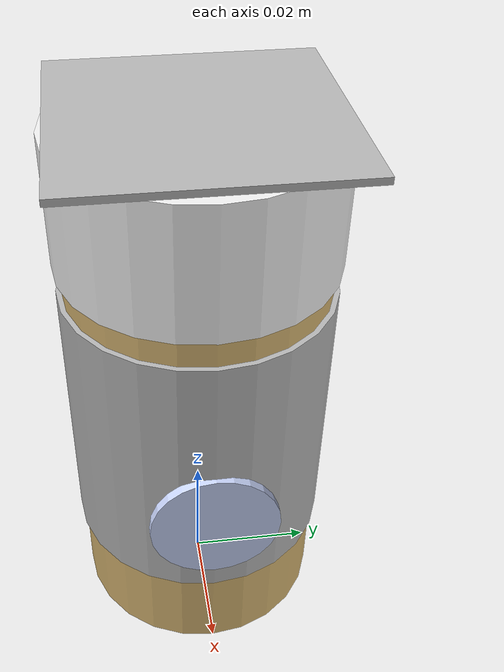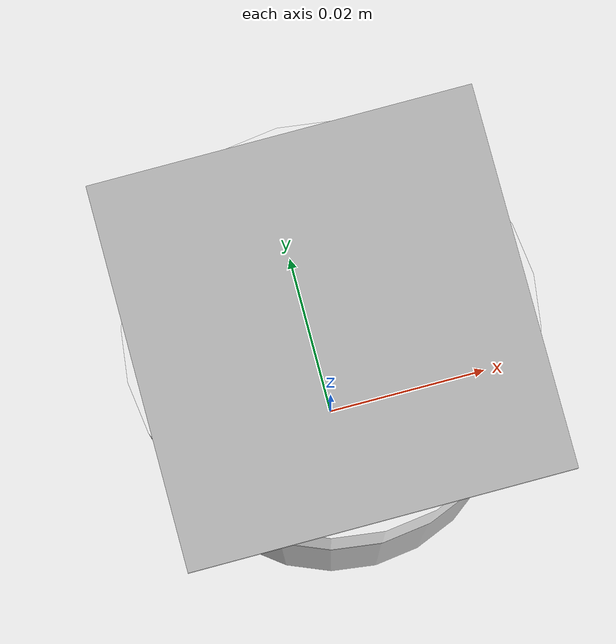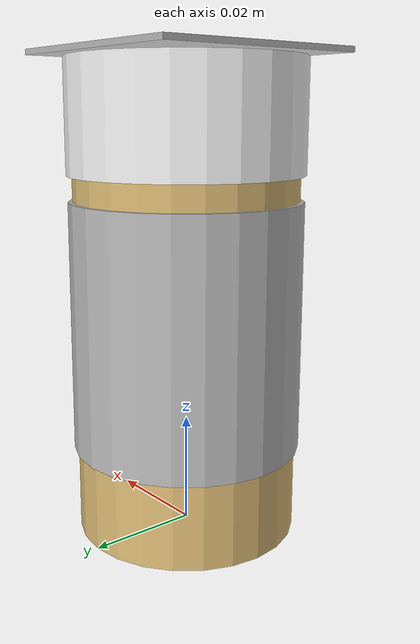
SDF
<?xml version="1.0"?>
<sdf version="1.6">
  <model name="nano_banana_bottle">
    <static>false</static>

    <!-- One link for stability (DART-friendly); visual details are separate visuals. -->
    <link name="bottle_link">
      <!-- Pose is left at origin; spawn/inclusion sets world pose. -->

      <inertial>
        <!-- Approx. small plastic bottle ~ 60g -->
        <mass>0.06</mass>
        <inertia>
          <ixx>1.2e-5</ixx>
          <ixy>0</ixy>
          <ixz>0</ixz>
          <iyy>1.2e-5</iyy>
          <iyz>0</iyz>
          <izz>2.0e-5</izz>
        </inertia>
      </inertial>

      <!-- Collision: simple cylinder -->
      <collision name="bottle_collision">
        <pose>0 0 0.035 0 0 0</pose>
        <geometry>
          <cylinder>
            <radius>0.020</radius>
            <length>0.070</length>
          </cylinder>
        </geometry>
        <surface>
          <friction>
            <ode>
              <mu>0.5</mu>
              <mu2>0.5</mu2>
            </ode>
          </friction>
          <contact>
            <ode>
              <kp>1e5</kp>
              <kd>50</kd>
              <max_vel>0.2</max_vel>
              <min_depth>0.001</min_depth>
            </ode>
          </contact>
        </surface>
      </collision>

      <!-- Bottle body (glossy plastic) -->
      <visual name="bottle_body_visual">
        <pose>0 0 0.035 0 0 0</pose>
        <geometry>
          <cylinder>
            <radius>0.020</radius>
            <length>0.070</length>
          </cylinder>
        </geometry>
        <material>
          <!-- Light amber-ish plastic (industrial pharmacy look) -->
          <ambient>0.85 0.72 0.45 1</ambient>
          <diffuse>0.85 0.72 0.45 1</diffuse>
          <specular>0.9 0.9 0.9 1</specular>
          <pbr>
            <metal>
              <albedo>0.85 0.72 0.45 1</albedo>
              <metalness>0.0</metalness>
              <roughness>0.08</roughness>
            </metal>
          </pbr>
        </material>
      </visual>

      <!-- Bottle cap (slightly larger, matte plastic) -->
      <visual name="bottle_cap_visual">
        <pose>0 0 0.075 0 0 0</pose>
        <geometry>
          <cylinder>
            <radius>0.021</radius>
            <length>0.020</length>
          </cylinder>
        </geometry>
        <material>
          <ambient>0.95 0.95 0.95 1</ambient>
          <diffuse>0.95 0.95 0.95 1</diffuse>
          <specular>0.2 0.2 0.2 1</specular>
          <pbr>
            <metal>
              <albedo>0.95 0.95 0.95 1</albedo>
              <metalness>0.0</metalness>
              <roughness>0.6</roughness>
            </metal>
          </pbr>
        </material>
      </visual>

      <!-- Top label for overhead camera (flat, high-contrast) -->
      <visual name="top_label_visual">
        <pose>0 0 0.086 0 0 0</pose>
        <geometry>
          <box>
            <size>0.040 0.040 0.001</size>
          </box>
        </geometry>
        <material>
          <script>
            <uri>model://medicine_bottle/materials/scripts</uri>
            <uri>model://medicine_bottle/materials/textures</uri>
            <name>MedicineBottle/TopLabel</name>
          </script>
        </material>
        <cast_shadows>false</cast_shadows>
      </visual>

      <!-- Label shell (thin cylinder, textured) -->
      <visual name="label_visual">
        <pose>0 0 0.038 0 0 0</pose>
        <geometry>
          <cylinder>
            <radius>0.0208</radius>
            <length>0.045</length>
          </cylinder>
        </geometry>
        <material>
          <script>
            <uri>model://medicine_bottle/materials/scripts</uri>
            <uri>model://medicine_bottle/materials/textures</uri>
            <name>MedicineBottle/Label</name>
          </script>
        </material>
        <!-- Make the label double-sided for easier viewing from any angle -->
        <cast_shadows>false</cast_shadows>
      </visual>

      <!-- Tamper-evident holographic seal sticker (extra shiny patch; visual only) -->
      <visual name="seal_visual">
        <pose>0.0208 0 0.030 0 1.5708 0</pose>
        <geometry>
          <cylinder>
            <radius>0.010</radius>
            <length>0.0015</length>
          </cylinder>
        </geometry>
        <material>
          <ambient>0.8 0.85 1.0 1</ambient>
          <diffuse>0.8 0.85 1.0 1</diffuse>
          <specular>1 1 1 1</specular>
          <pbr>
            <metal>
              <albedo>0.8 0.85 1.0 1</albedo>
              <metalness>0.9</metalness>
              <roughness>0.05</roughness>
            </metal>
          </pbr>
        </material>
        <cast_shadows>false</cast_shadows>
      </visual>

    </link>
  </model>
</sdf>
